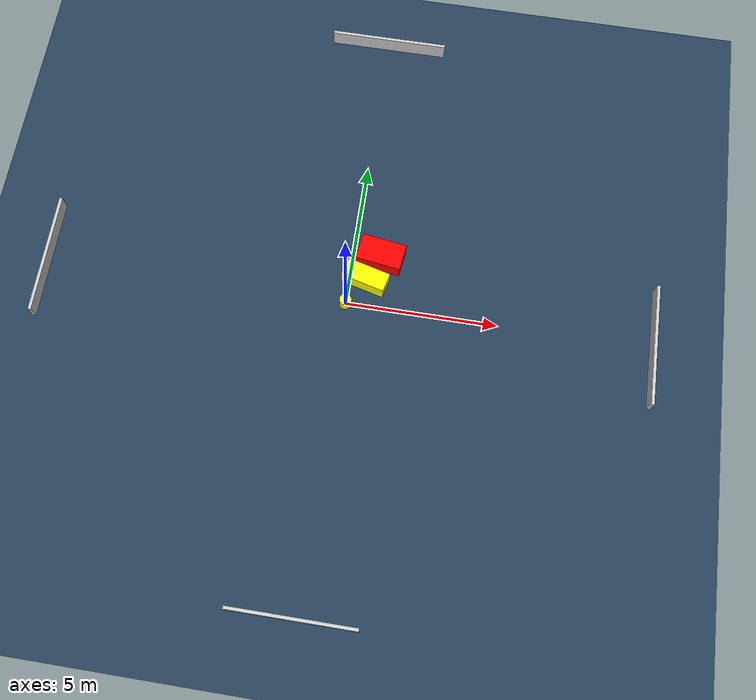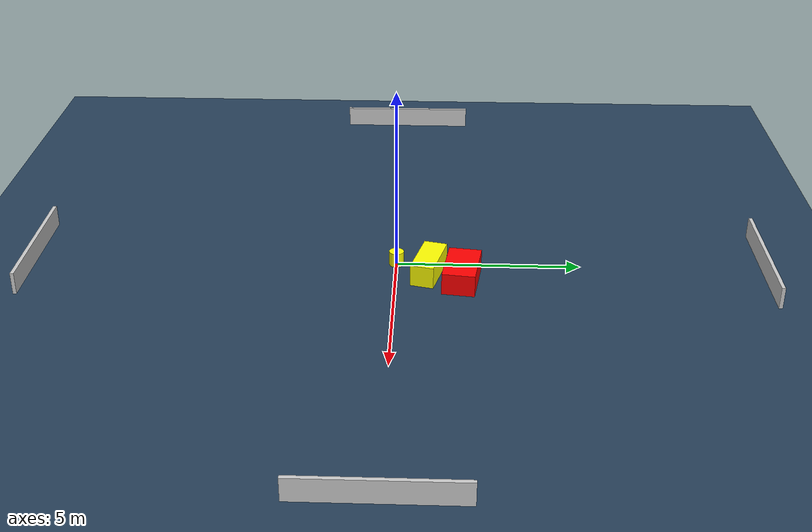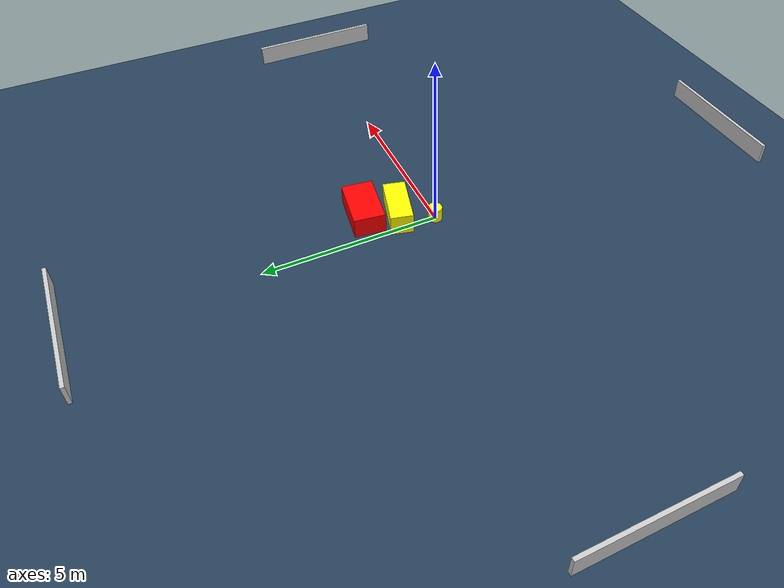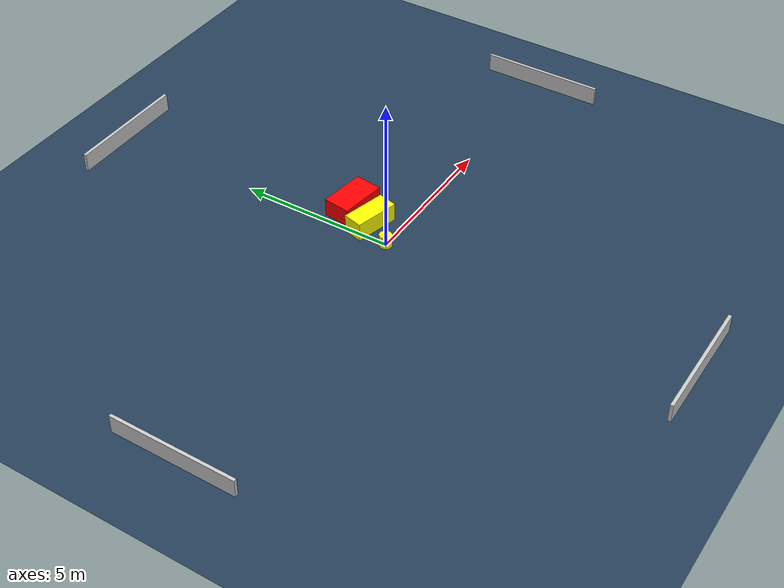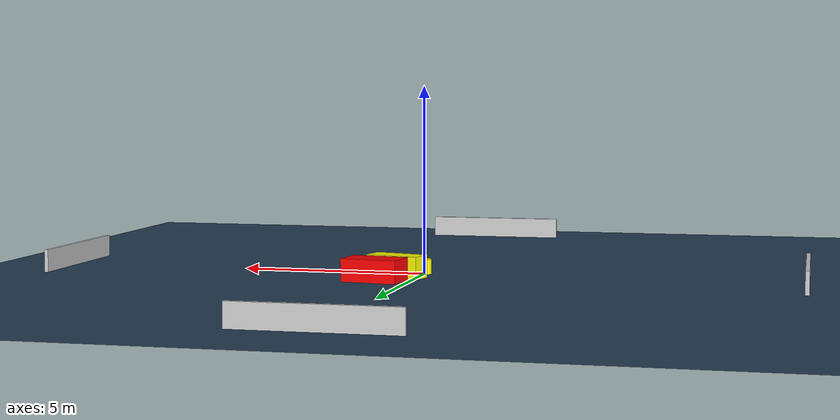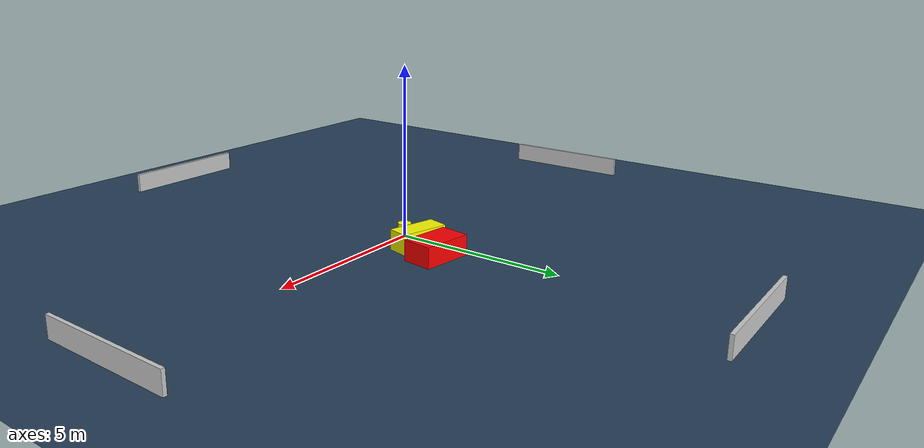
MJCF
<?xml version="1.0" ?>
<mujoco model="generated_environment">
  <option timestep="0.01" integrator="RK4" cone="elliptic"/>
  <default>
    <geom density="1"/>
  </default>
  <asset>
    <texture builtin="gradient" height="3072" name="skybox" rgb1="0.3 0.5 0.7" rgb2="0 0 0" type="skybox" width="512"/>
    <texture builtin="checker" height="300" name="groundplane" rgb1="0.2 0.3 0.4" rgb2="0.1 0.2 0.3" type="2d" width="300"/>
    <material name="groundplane" reflectance="0.2" texrepeat="5 5" texture="groundplane"/>
  </asset>
  <worldbody>
    <light dir="0 0 -1" directional="true" pos="0 0 1.5"/>
    <geom condim="3" friction="0.5 0.005 0.001" material="groundplane" name="floor" pos="0 0 0" size="0 0 0.05" type="plane"/>
    <body name="walls">
      <geom name="wall_1" condim="4" pos="-10.0 0.0 0.3" rgba="0.800000011920929 0.800000011920929 0.800000011920929 1.0" size="0.05 2.0 0.3" type="box"/>
      <geom name="wall_2" condim="4" pos="10.0 0.0 0.3" rgba="0.800000011920929 0.800000011920929 0.800000011920929 1.0" size="0.05 2.0 0.3" type="box"/>
      <geom name="wall_3" condim="4" pos="0.0 -10.0 0.3" rgba="0.800000011920929 0.800000011920929 0.800000011920929 1.0" size="2.0 0.05 0.3" type="box"/>
      <geom name="wall_4" condim="4" pos="0.0 10.0 0.3" rgba="0.800000011920929 0.800000011920929 0.800000011920929 1.0" size="2.0 0.05 0.3" type="box"/>
    </body>
    <body name="robot">
      <joint name="joint_x" type="slide" pos="0 0 0" axis="1 0 0"/>
      <joint name="joint_y" type="slide" pos="0 0 0" axis="0 1 0"/>
      <geom name="robot" type="cylinder" pos="0.0 0.0 0.2" size="0.2 0.2 0.0" mass="5.0" friction="1.0 0.005 0.0001" condim="4" rgba="1.0 1.0 0.0 1.0"/>
    </body>
    <body name="obstacle_1_movable">
      <geom name="obstacle_1_movable" condim="4" pos="0.5320683242291657 0.8922565904293983 0.3" euler="0 0 75.71215891777415" friction="0.0 0.005 0.001" rgba="1.0 1.0 0.0 1.0" size="0.3179211834753212 0.729759506279732 0.3" type="box" mass="0.1"/>
      <joint type="free"/>
    </body>
    <body name="obstacle_2_static">
      <geom name="obstacle_2_static" condim="4" pos="0.9094287668991372 1.7768033734403128 0.3" euler="0 0 82.29968663452294" friction="0.0 0.005 0.001" rgba="1.0 0.0 0.0 1.0" size="0.4422871450500279 0.7527724583240103 0.3" type="box"/>
    </body>
  </worldbody>
  <actuator>
    <motor name="actuator_x" joint="joint_x" gear="1" ctrlrange="-1 1"/>
    <motor name="actuator_y" joint="joint_y" gear="1" ctrlrange="-1 1"/>
  </actuator>
</mujoco>
